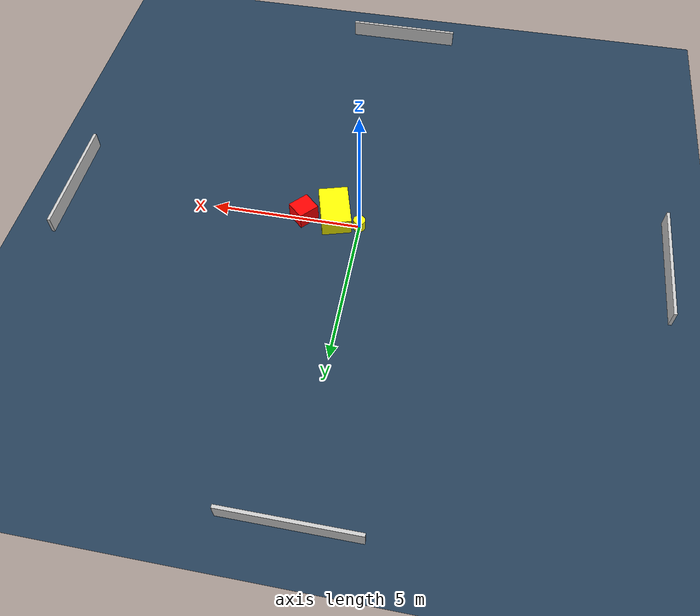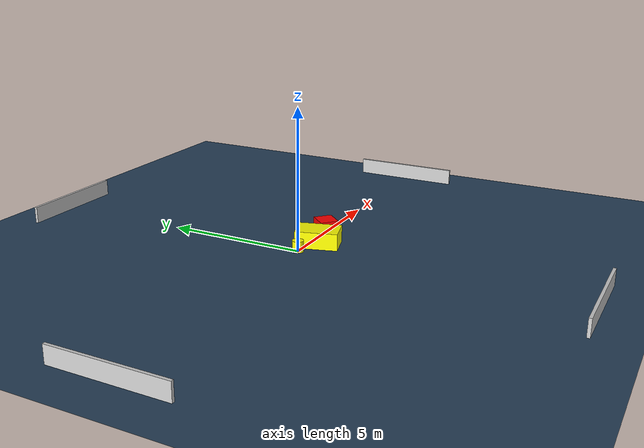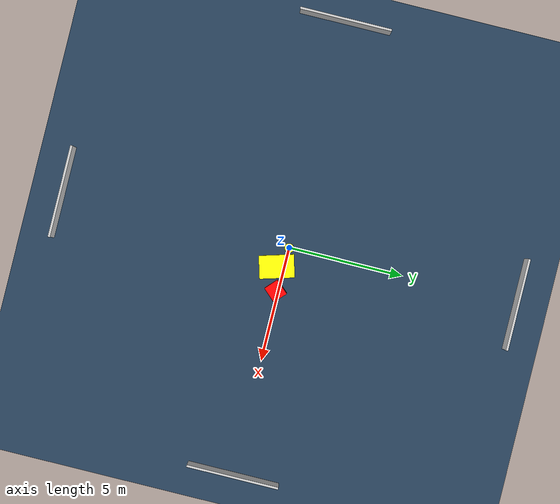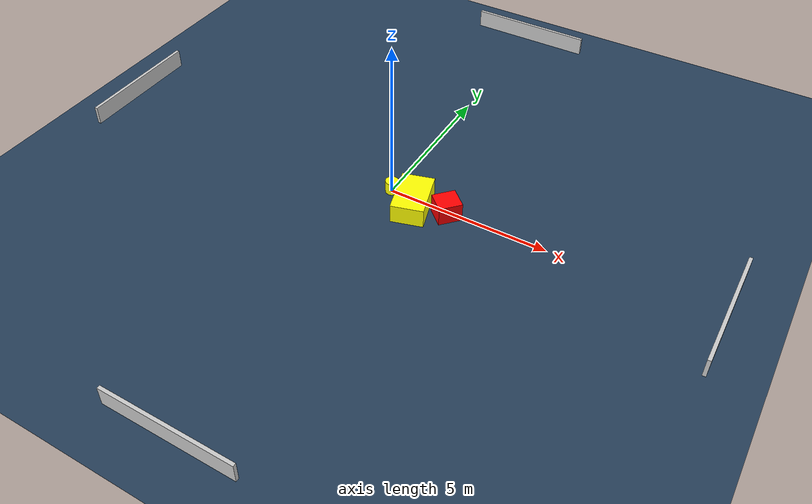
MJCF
<?xml version="1.0" ?>
<mujoco model="generated_environment">
  <option timestep="0.01" integrator="RK4" cone="elliptic"/>
  <default>
    <geom density="1"/>
  </default>
  <asset>
    <texture builtin="gradient" height="3072" name="skybox" rgb1="0.3 0.5 0.7" rgb2="0 0 0" type="skybox" width="512"/>
    <texture builtin="checker" height="300" name="groundplane" rgb1="0.2 0.3 0.4" rgb2="0.1 0.2 0.3" type="2d" width="300"/>
    <material name="groundplane" reflectance="0.2" texrepeat="5 5" texture="groundplane"/>
  </asset>
  <worldbody>
    <light dir="0 0 -1" directional="true" pos="0 0 1.5"/>
    <geom condim="3" friction="0.5 0.005 0.001" material="groundplane" name="floor" pos="0 0 0" size="0 0 0.05" type="plane"/>
    <body name="walls">
      <geom name="wall_1" condim="4" pos="-10.0 0.0 0.3" rgba="0.800000011920929 0.800000011920929 0.800000011920929 1.0" size="0.05 2.0 0.3" type="box"/>
      <geom name="wall_2" condim="4" pos="10.0 0.0 0.3" rgba="0.800000011920929 0.800000011920929 0.800000011920929 1.0" size="0.05 2.0 0.3" type="box"/>
      <geom name="wall_3" condim="4" pos="0.0 -10.0 0.3" rgba="0.800000011920929 0.800000011920929 0.800000011920929 1.0" size="2.0 0.05 0.3" type="box"/>
      <geom name="wall_4" condim="4" pos="0.0 10.0 0.3" rgba="0.800000011920929 0.800000011920929 0.800000011920929 1.0" size="2.0 0.05 0.3" type="box"/>
    </body>
    <body name="robot">
      <joint name="joint_x" type="slide" pos="0 0 0" axis="1 0 0"/>
      <joint name="joint_y" type="slide" pos="0 0 0" axis="0 1 0"/>
      <geom name="robot" type="cylinder" pos="0.0 0.0 0.2" size="0.2 0.2 0.0" mass="5.0" friction="1.0 0.005 0.0001" condim="4" rgba="1.0 1.0 0.0 1.0"/>
    </body>
    <body name="obstacle_1_movable">
      <geom name="obstacle_1_movable" condim="4" pos="0.8930797682373081 -0.325155374258205 0.3" euler="0 0 106.11471198712411" friction="0.0 0.005 0.001" rgba="1.0 1.0 0.0 1.0" size="0.7502147580853094 0.4944600897036289 0.3" type="box" mass="0.1"/>
      <joint type="free"/>
    </body>
    <body name="obstacle_2_static">
      <geom name="obstacle_2_static" condim="4" pos="1.9109465682557383 -0.11823512994445554 0.3" euler="0 0 317.53675942603445" friction="0.0 0.005 0.001" rgba="1.0 0.0 0.0 1.0" size="0.33154392057973703 0.3589953866044841 0.3" type="box"/>
    </body>
  </worldbody>
  <actuator>
    <motor name="actuator_x" joint="joint_x" gear="1" ctrlrange="-1 1"/>
    <motor name="actuator_y" joint="joint_y" gear="1" ctrlrange="-1 1"/>
  </actuator>
</mujoco>
